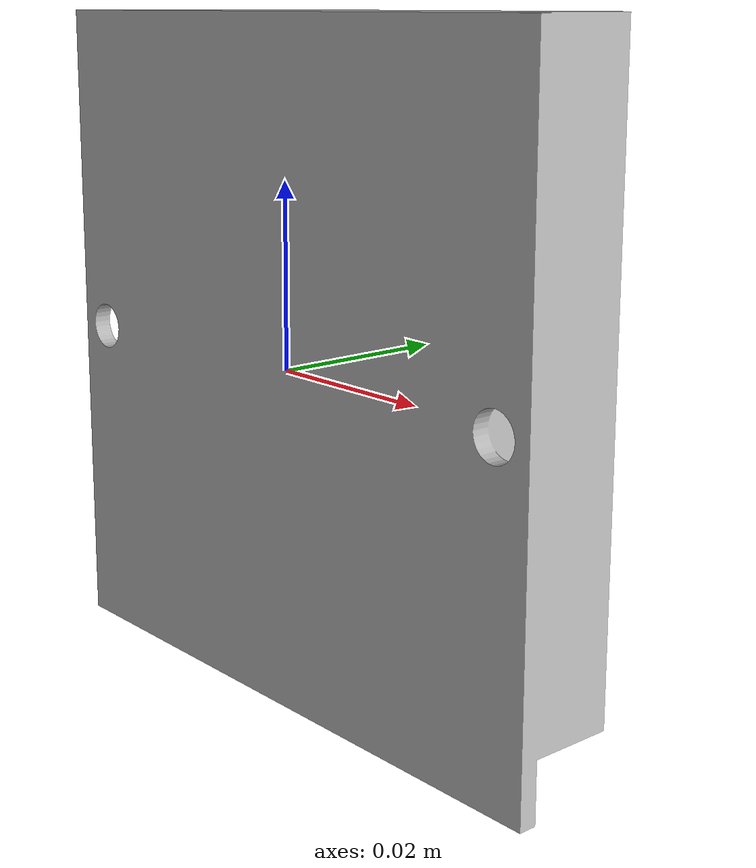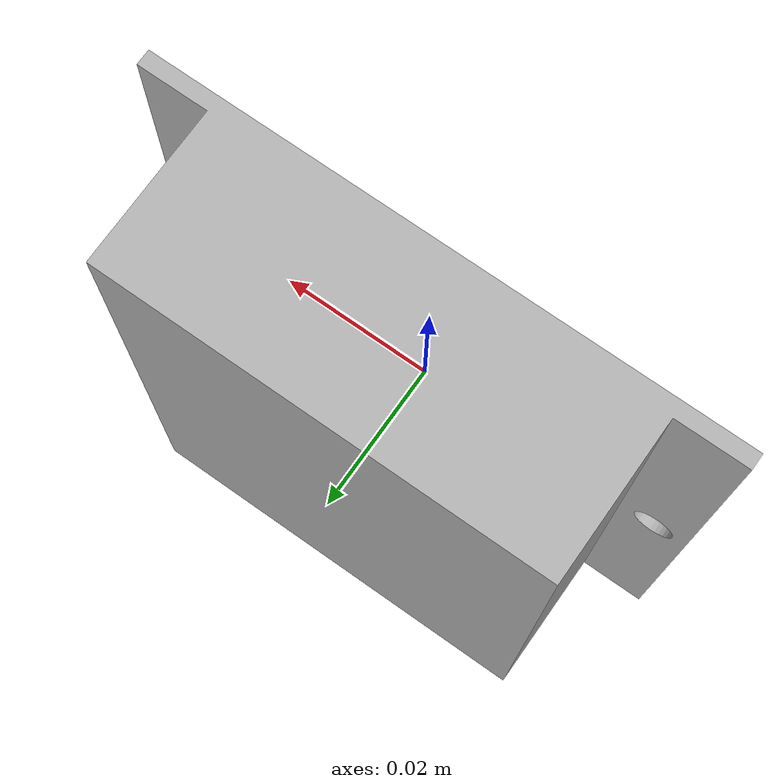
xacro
<?xml version="1.0" ?>
<robot name="48v" xmlns:xacro="http://www.ros.org/wiki/xacro">

<xacro:include filename="$(find 48v_description)/urdf/materials.xacro" />
<xacro:include filename="$(find 48v_description)/urdf/48v.trans" />
<xacro:include filename="$(find 48v_description)/urdf/48v.gazebo" />
<link name="base_link">
  <inertial>
    <origin xyz="-2.6680289180270685e-16 0.00872523473946709 6.063702086425155e-18" rpy="0 0 0"/>
    <mass value="0.7358884583995312"/>
    <inertia ixx="0.000367" iyy="0.000545" izz="0.000239" ixy="-0.0" iyz="0.0" ixz="0.0"/>
  </inertial>
  <visual>
    <origin xyz="0 0 0" rpy="0 0 0"/>
    <geometry>
      <mesh filename="package://48v_description/meshes/base_link.stl" scale="0.001 0.001 0.001"/>
    </geometry>
    <material name="silver"/>
  </visual>
  <collision>
    <origin xyz="0 0 0" rpy="0 0 0"/>
    <geometry>
      <mesh filename="package://48v_description/meshes/base_link.stl" scale="0.001 0.001 0.001"/>
    </geometry>
  </collision>
</link>

</robot>

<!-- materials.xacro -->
<robot name="48v" xmlns:xacro="http://www.ros.org/wiki/xacro" >

<material name="silver">
  <color rgba="0.700 0.700 0.700 1.000"/>
</material>

</robot>

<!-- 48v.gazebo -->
<robot name="48v" xmlns:xacro="http://www.ros.org/wiki/xacro" >

<xacro:property name="body_color" value="Gazebo/Silver" />

<gazebo>
  <plugin name="control" filename="libgazebo_ros_control.so"/>
</gazebo>
<gazebo reference="base_link">
  <material>${body_color}</material>
  <mu1>0.2</mu1>
  <mu2>0.2</mu2>
  <selfCollide>true</selfCollide>
  <gravity>true</gravity>
</gazebo>

</robot>
